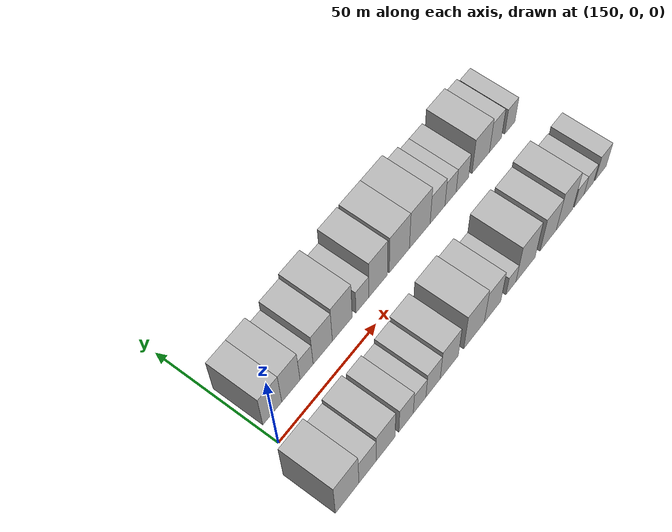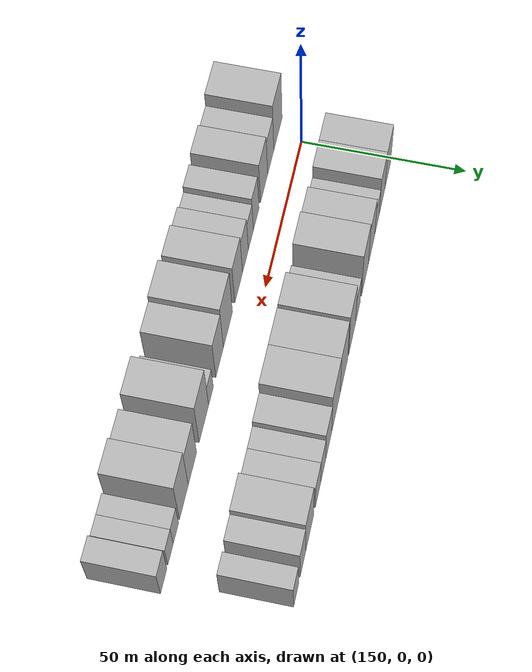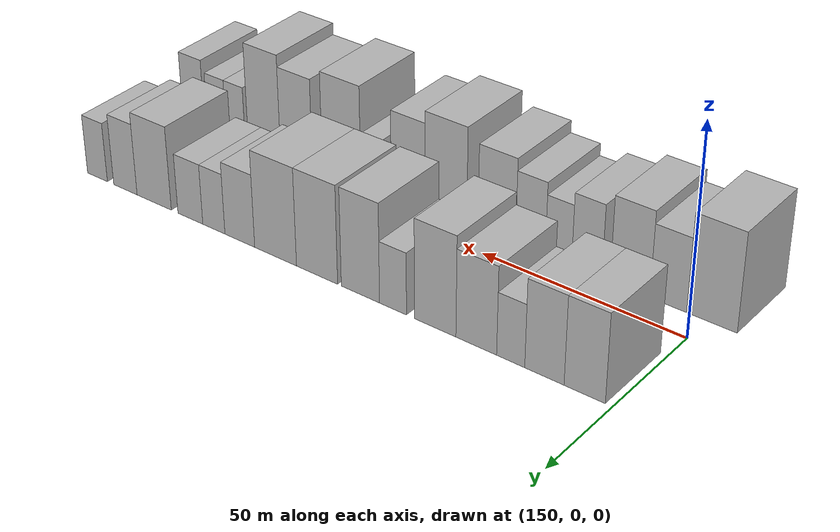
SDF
<sdf version="1.6">
 <world name="default">
  <model name="building_16">
   <static>1</static>
   <pose>156.3783 17.5000 0 0.000000 0.000000 1.570796</pose>
   <link name="link">
    <pose>0 0 10.50 0 0 0</pose>
    <collision name="collision"><geometry><box><size>20.0000 9.3675 21.0000</size></box></geometry></collision>
    <visual name="visual">
     <cast_shadows>0</cast_shadows>
     <geometry><box><size>20.0000 9.3675 21.0000</size></box></geometry>
     <material>
      <script>
       <uri>model://HANNAS_wall/materials/scripts</uri>
       <uri>model://HANNAS_wall/materials/textures</uri>
       <name>vrc/HANNAS_wall</name>
      </script>
     </material>
    </visual>
   </link>
  </model>
  <model name="building_17">
   <static>1</static>
   <pose>165.6403 17.5000 0 0.000000 0.000000 1.570796</pose>
   <link name="link">
    <pose>0 0 10.50 0 0 0</pose>
    <collision name="collision"><geometry><box><size>20.0000 9.1563 21.0000</size></box></geometry></collision>
    <visual name="visual">
     <cast_shadows>0</cast_shadows>
     <geometry><box><size>20.0000 9.1563 21.0000</size></box></geometry>
     <material>
      <script>
       <uri>model://HANNAS_wall/materials/scripts</uri>
       <uri>model://HANNAS_wall/materials/textures</uri>
       <name>vrc/HANNAS_wall</name>
      </script>
     </material>
    </visual>
   </link>
  </model>
  <model name="building_18">
   <static>1</static>
   <pose>173.5672 17.5000 0 0.000000 0.000000 1.570796</pose>
   <link name="link">
    <pose>0 0 7.50 0 0 0</pose>
    <collision name="collision"><geometry><box><size>20.0000 6.6975 15.0000</size></box></geometry></collision>
    <visual name="visual">
     <cast_shadows>0</cast_shadows>
     <geometry><box><size>20.0000 6.6975 15.0000</size></box></geometry>
     <material>
      <script>
       <uri>model://HANNAS_wall/materials/scripts</uri>
       <uri>model://HANNAS_wall/materials/textures</uri>
       <name>vrc/HANNAS_wall</name>
      </script>
     </material>
    </visual>
   </link>
  </model>
  <model name="building_19">
   <static>1</static>
   <pose>181.8697 17.5000 0 0.000000 0.000000 1.570796</pose>
   <link name="link">
    <pose>0 0 10.50 0 0 0</pose>
    <collision name="collision"><geometry><box><size>20.0000 9.9075 21.0000</size></box></geometry></collision>
    <visual name="visual">
     <cast_shadows>0</cast_shadows>
     <geometry><box><size>20.0000 9.9075 21.0000</size></box></geometry>
     <material>
      <script>
       <uri>model://HANNAS_wall/materials/scripts</uri>
       <uri>model://HANNAS_wall/materials/textures</uri>
       <name>vrc/HANNAS_wall</name>
      </script>
     </material>
    </visual>
   </link>
  </model>
  <model name="building_20">
   <static>1</static>
   <pose>192.0261 17.5000 0 0.000000 0.000000 1.570796</pose>
   <link name="link">
    <pose>0 0 12.00 0 0 0</pose>
    <collision name="collision"><geometry><box><size>20.0000 10.4054 24.0000</size></box></geometry></collision>
    <visual name="visual">
     <cast_shadows>0</cast_shadows>
     <geometry><box><size>20.0000 10.4054 24.0000</size></box></geometry>
     <material>
      <script>
       <uri>model://HANNAS_wall/materials/scripts</uri>
       <uri>model://HANNAS_wall/materials/textures</uri>
       <name>vrc/HANNAS_wall</name>
      </script>
     </material>
    </visual>
   </link>
  </model>
  <model name="building_21">
   <static>1</static>
   <pose>202.6918 17.5000 0 0.000000 0.000000 1.570796</pose>
   <link name="link">
    <pose>0 0 7.50 0 0 0</pose>
    <collision name="collision"><geometry><box><size>20.0000 6.9259 15.0000</size></box></geometry></collision>
    <visual name="visual">
     <cast_shadows>0</cast_shadows>
     <geometry><box><size>20.0000 6.9259 15.0000</size></box></geometry>
     <material>
      <script>
       <uri>model://HANNAS_wall/materials/scripts</uri>
       <uri>model://HANNAS_wall/materials/textures</uri>
       <name>vrc/HANNAS_wall</name>
      </script>
     </material>
    </visual>
   </link>
  </model>
  <model name="building_22">
   <static>1</static>
   <pose>211.1775 17.5000 0 0.000000 0.000000 1.570796</pose>
   <link name="link">
    <pose>0 0 12.00 0 0 0</pose>
    <collision name="collision"><geometry><box><size>20.0000 10.0453 24.0000</size></box></geometry></collision>
    <visual name="visual">
     <cast_shadows>0</cast_shadows>
     <geometry><box><size>20.0000 10.0453 24.0000</size></box></geometry>
     <material>
      <script>
       <uri>model://HANNAS_wall/materials/scripts</uri>
       <uri>model://HANNAS_wall/materials/textures</uri>
       <name>vrc/HANNAS_wall</name>
      </script>
     </material>
    </visual>
   </link>
  </model>
  <model name="building_23">
   <static>1</static>
   <pose>222.7701 17.5000 0 0.000000 0.000000 1.570796</pose>
   <link name="link">
    <pose>0 0 12.00 0 0 0</pose>
    <collision name="collision"><geometry><box><size>20.0000 11.1399 24.0000</size></box></geometry></collision>
    <visual name="visual">
     <cast_shadows>0</cast_shadows>
     <geometry><box><size>20.0000 11.1399 24.0000</size></box></geometry>
     <material>
      <script>
       <uri>model://HANNAS_wall/materials/scripts</uri>
       <uri>model://HANNAS_wall/materials/textures</uri>
       <name>vrc/HANNAS_wall</name>
      </script>
     </material>
    </visual>
   </link>
  </model>
  <model name="building_24">
   <static>1</static>
   <pose>234.1753 17.5000 0 0.000000 0.000000 1.570796</pose>
   <link name="link">
    <pose>0 0 12.00 0 0 0</pose>
    <collision name="collision"><geometry><box><size>20.0000 11.6705 24.0000</size></box></geometry></collision>
    <visual name="visual">
     <cast_shadows>0</cast_shadows>
     <geometry><box><size>20.0000 11.6705 24.0000</size></box></geometry>
     <material>
      <script>
       <uri>model://HANNAS_wall/materials/scripts</uri>
       <uri>model://HANNAS_wall/materials/textures</uri>
       <name>vrc/HANNAS_wall</name>
      </script>
     </material>
    </visual>
   </link>
  </model>
  <model name="building_25">
   <static>1</static>
   <pose>244.2708 17.5000 0 0.000000 0.000000 1.570796</pose>
   <link name="link">
    <pose>0 0 9.00 0 0 0</pose>
    <collision name="collision"><geometry><box><size>20.0000 8.5207 18.0000</size></box></geometry></collision>
    <visual name="visual">
     <cast_shadows>0</cast_shadows>
     <geometry><box><size>20.0000 8.5207 18.0000</size></box></geometry>
     <material>
      <script>
       <uri>model://HANNAS_wall/materials/scripts</uri>
       <uri>model://HANNAS_wall/materials/textures</uri>
       <name>vrc/HANNAS_wall</name>
      </script>
     </material>
    </visual>
   </link>
  </model>
  <model name="building_26">
   <static>1</static>
   <pose>251.7614 17.5000 0 0.000000 0.000000 1.570796</pose>
   <link name="link">
    <pose>0 0 7.50 0 0 0</pose>
    <collision name="collision"><geometry><box><size>20.0000 6.4604 15.0000</size></box></geometry></collision>
    <visual name="visual">
     <cast_shadows>0</cast_shadows>
     <geometry><box><size>20.0000 6.4604 15.0000</size></box></geometry>
     <material>
      <script>
       <uri>model://HANNAS_wall/materials/scripts</uri>
       <uri>model://HANNAS_wall/materials/textures</uri>
       <name>vrc/HANNAS_wall</name>
      </script>
     </material>
    </visual>
   </link>
  </model>
  <model name="building_27">
   <static>1</static>
   <pose>258.6778 17.5000 0 0.000000 0.000000 1.570796</pose>
   <link name="link">
    <pose>0 0 7.50 0 0 0</pose>
    <collision name="collision"><geometry><box><size>20.0000 7.3725 15.0000</size></box></geometry></collision>
    <visual name="visual">
     <cast_shadows>0</cast_shadows>
     <geometry><box><size>20.0000 7.3725 15.0000</size></box></geometry>
     <material>
      <script>
       <uri>model://HANNAS_wall/materials/scripts</uri>
       <uri>model://HANNAS_wall/materials/textures</uri>
       <name>vrc/HANNAS_wall</name>
      </script>
     </material>
    </visual>
   </link>
  </model>
  <model name="building_28">
   <static>1</static>
   <pose>269.5760 17.5000 0 0.000000 0.000000 1.570796</pose>
   <link name="link">
    <pose>0 0 10.50 0 0 0</pose>
    <collision name="collision"><geometry><box><size>20.0000 10.4240 21.0000</size></box></geometry></collision>
    <visual name="visual">
     <cast_shadows>0</cast_shadows>
     <geometry><box><size>20.0000 10.4240 21.0000</size></box></geometry>
     <material>
      <script>
       <uri>model://HANNAS_wall/materials/scripts</uri>
       <uri>model://HANNAS_wall/materials/textures</uri>
       <name>vrc/HANNAS_wall</name>
      </script>
     </material>
    </visual>
   </link>
  </model>
  <model name="building_29">
   <static>1</static>
   <pose>278.4209 17.5000 0 0.000000 0.000000 1.570796</pose>
   <link name="link">
    <pose>0 0 9.00 0 0 0</pose>
    <collision name="collision"><geometry><box><size>20.0000 7.2658 18.0000</size></box></geometry></collision>
    <visual name="visual">
     <cast_shadows>0</cast_shadows>
     <geometry><box><size>20.0000 7.2658 18.0000</size></box></geometry>
     <material>
      <script>
       <uri>model://HANNAS_wall/materials/scripts</uri>
       <uri>model://HANNAS_wall/materials/textures</uri>
       <name>vrc/HANNAS_wall</name>
      </script>
     </material>
    </visual>
   </link>
  </model>
  <model name="building_30">
   <static>1</static>
   <pose>287.1902 17.5000 0 0.000000 0.000000 1.570796</pose>
   <link name="link">
    <pose>0 0 7.50 0 0 0</pose>
    <collision name="collision"><geometry><box><size>20.0000 6.2728 15.0000</size></box></geometry></collision>
    <visual name="visual">
     <cast_shadows>0</cast_shadows>
     <geometry><box><size>20.0000 6.2728 15.0000</size></box></geometry>
     <material>
      <script>
       <uri>model://HANNAS_wall/materials/scripts</uri>
       <uri>model://HANNAS_wall/materials/textures</uri>
       <name>vrc/HANNAS_wall</name>
      </script>
     </material>
    </visual>
   </link>
  </model>
  <model name="building_45">
   <static>1</static>
   <pose>148.8252 -17.5000 0 0.000000 0.000000 1.570796</pose>
   <link name="link">
    <pose>0 0 12.00 0 0 0</pose>
    <collision name="collision"><geometry><box><size>20.0000 11.6465 24.0000</size></box></geometry></collision>
    <visual name="visual">
     <cast_shadows>0</cast_shadows>
     <geometry><box><size>20.0000 11.6465 24.0000</size></box></geometry>
     <material>
      <script>
       <uri>model://HANNAS_wall/materials/scripts</uri>
       <uri>model://HANNAS_wall/materials/textures</uri>
       <name>vrc/HANNAS_wall</name>
      </script>
     </material>
    </visual>
   </link>
  </model>
  <model name="building_46">
   <static>1</static>
   <pose>158.9990 -17.5000 0 0.000000 0.000000 1.570796</pose>
   <link name="link">
    <pose>0 0 9.00 0 0 0</pose>
    <collision name="collision"><geometry><box><size>20.0000 8.7010 18.0000</size></box></geometry></collision>
    <visual name="visual">
     <cast_shadows>0</cast_shadows>
     <geometry><box><size>20.0000 8.7010 18.0000</size></box></geometry>
     <material>
      <script>
       <uri>model://HANNAS_wall/materials/scripts</uri>
       <uri>model://HANNAS_wall/materials/textures</uri>
       <name>vrc/HANNAS_wall</name>
      </script>
     </material>
    </visual>
   </link>
  </model>
  <model name="building_47">
   <static>1</static>
   <pose>168.1669 -17.5000 0 0.000000 0.000000 1.570796</pose>
   <link name="link">
    <pose>0 0 10.50 0 0 0</pose>
    <collision name="collision"><geometry><box><size>20.0000 9.6349 21.0000</size></box></geometry></collision>
    <visual name="visual">
     <cast_shadows>0</cast_shadows>
     <geometry><box><size>20.0000 9.6349 21.0000</size></box></geometry>
     <material>
      <script>
       <uri>model://HANNAS_wall/materials/scripts</uri>
       <uri>model://HANNAS_wall/materials/textures</uri>
       <name>vrc/HANNAS_wall</name>
      </script>
     </material>
    </visual>
   </link>
  </model>
  <model name="building_48">
   <static>1</static>
   <pose>178.7441 -17.5000 0 0.000000 0.000000 1.570796</pose>
   <link name="link">
    <pose>0 0 9.00 0 0 0</pose>
    <collision name="collision"><geometry><box><size>20.0000 7.5194 18.0000</size></box></geometry></collision>
    <visual name="visual">
     <cast_shadows>0</cast_shadows>
     <geometry><box><size>20.0000 7.5194 18.0000</size></box></geometry>
     <material>
      <script>
       <uri>model://HANNAS_wall/materials/scripts</uri>
       <uri>model://HANNAS_wall/materials/textures</uri>
       <name>vrc/HANNAS_wall</name>
      </script>
     </material>
    </visual>
   </link>
  </model>
  <model name="building_49">
   <static>1</static>
   <pose>185.8427 -17.5000 0 0.000000 0.000000 1.570796</pose>
   <link name="link">
    <pose>0 0 7.50 0 0 0</pose>
    <collision name="collision"><geometry><box><size>20.0000 6.6780 15.0000</size></box></geometry></collision>
    <visual name="visual">
     <cast_shadows>0</cast_shadows>
     <geometry><box><size>20.0000 6.6780 15.0000</size></box></geometry>
     <material>
      <script>
       <uri>model://HANNAS_wall/materials/scripts</uri>
       <uri>model://HANNAS_wall/materials/textures</uri>
       <name>vrc/HANNAS_wall</name>
      </script>
     </material>
    </visual>
   </link>
  </model>
  <model name="building_50">
   <static>1</static>
   <pose>192.9999 -17.5000 0 0.000000 0.000000 1.570796</pose>
   <link name="link">
    <pose>0 0 9.00 0 0 0</pose>
    <collision name="collision"><geometry><box><size>20.0000 7.6363 18.0000</size></box></geometry></collision>
    <visual name="visual">
     <cast_shadows>0</cast_shadows>
     <geometry><box><size>20.0000 7.6363 18.0000</size></box></geometry>
     <material>
      <script>
       <uri>model://HANNAS_wall/materials/scripts</uri>
       <uri>model://HANNAS_wall/materials/textures</uri>
       <name>vrc/HANNAS_wall</name>
      </script>
     </material>
    </visual>
   </link>
  </model>
  <model name="building_51">
   <static>1</static>
   <pose>201.7672 -17.5000 0 0.000000 0.000000 1.570796</pose>
   <link name="link">
    <pose>0 0 10.50 0 0 0</pose>
    <collision name="collision"><geometry><box><size>20.0000 9.8984 21.0000</size></box></geometry></collision>
    <visual name="visual">
     <cast_shadows>0</cast_shadows>
     <geometry><box><size>20.0000 9.8984 21.0000</size></box></geometry>
     <material>
      <script>
       <uri>model://HANNAS_wall/materials/scripts</uri>
       <uri>model://HANNAS_wall/materials/textures</uri>
       <name>vrc/HANNAS_wall</name>
      </script>
     </material>
    </visual>
   </link>
  </model>
  <model name="building_52">
   <static>1</static>
   <pose>215.4058 -17.5000 0 0.000000 0.000000 1.570796</pose>
   <link name="link">
    <pose>0 0 12.00 0 0 0</pose>
    <collision name="collision"><geometry><box><size>20.0000 11.3788 24.0000</size></box></geometry></collision>
    <visual name="visual">
     <cast_shadows>0</cast_shadows>
     <geometry><box><size>20.0000 11.3788 24.0000</size></box></geometry>
     <material>
      <script>
       <uri>model://HANNAS_wall/materials/scripts</uri>
       <uri>model://HANNAS_wall/materials/textures</uri>
       <name>vrc/HANNAS_wall</name>
      </script>
     </material>
    </visual>
   </link>
  </model>
  <model name="building_53">
   <static>1</static>
   <pose>225.8042 -17.5000 0 0.000000 0.000000 1.570796</pose>
   <link name="link">
    <pose>0 0 10.50 0 0 0</pose>
    <collision name="collision"><geometry><box><size>20.0000 9.4179 21.0000</size></box></geometry></collision>
    <visual name="visual">
     <cast_shadows>0</cast_shadows>
     <geometry><box><size>20.0000 9.4179 21.0000</size></box></geometry>
     <material>
      <script>
       <uri>model://HANNAS_wall/materials/scripts</uri>
       <uri>model://HANNAS_wall/materials/textures</uri>
       <name>vrc/HANNAS_wall</name>
      </script>
     </material>
    </visual>
   </link>
  </model>
  <model name="building_54">
   <static>1</static>
   <pose>236.3628 -17.5000 0 0.000000 0.000000 1.570796</pose>
   <link name="link">
    <pose>0 0 6.00 0 0 0</pose>
    <collision name="collision"><geometry><box><size>20.0000 5.6993 12.0000</size></box></geometry></collision>
    <visual name="visual">
     <cast_shadows>0</cast_shadows>
     <geometry><box><size>20.0000 5.6993 12.0000</size></box></geometry>
     <material>
      <script>
       <uri>model://HANNAS_wall/materials/scripts</uri>
       <uri>model://HANNAS_wall/materials/textures</uri>
       <name>vrc/HANNAS_wall</name>
      </script>
     </material>
    </visual>
   </link>
  </model>
  <model name="building_55">
   <static>1</static>
   <pose>244.8325 -17.5000 0 0.000000 0.000000 1.570796</pose>
   <link name="link">
    <pose>0 0 12.00 0 0 0</pose>
    <collision name="collision"><geometry><box><size>20.0000 11.2401 24.0000</size></box></geometry></collision>
    <visual name="visual">
     <cast_shadows>0</cast_shadows>
     <geometry><box><size>20.0000 11.2401 24.0000</size></box></geometry>
     <material>
      <script>
       <uri>model://HANNAS_wall/materials/scripts</uri>
       <uri>model://HANNAS_wall/materials/textures</uri>
       <name>vrc/HANNAS_wall</name>
      </script>
     </material>
    </visual>
   </link>
  </model>
  <model name="building_56">
   <static>1</static>
   <pose>258.2687 -17.5000 0 0.000000 0.000000 1.570796</pose>
   <link name="link">
    <pose>0 0 10.50 0 0 0</pose>
    <collision name="collision"><geometry><box><size>20.0000 9.6323 21.0000</size></box></geometry></collision>
    <visual name="visual">
     <cast_shadows>0</cast_shadows>
     <geometry><box><size>20.0000 9.6323 21.0000</size></box></geometry>
     <material>
      <script>
       <uri>model://HANNAS_wall/materials/scripts</uri>
       <uri>model://HANNAS_wall/materials/textures</uri>
       <name>vrc/HANNAS_wall</name>
      </script>
     </material>
    </visual>
   </link>
  </model>
  <model name="building_57">
   <static>1</static>
   <pose>268.0836 -17.5000 0 0.000000 0.000000 1.570796</pose>
   <link name="link">
    <pose>0 0 12.00 0 0 0</pose>
    <collision name="collision"><geometry><box><size>20.0000 9.9975 24.0000</size></box></geometry></collision>
    <visual name="visual">
     <cast_shadows>0</cast_shadows>
     <geometry><box><size>20.0000 9.9975 24.0000</size></box></geometry>
     <material>
      <script>
       <uri>model://HANNAS_wall/materials/scripts</uri>
       <uri>model://HANNAS_wall/materials/textures</uri>
       <name>vrc/HANNAS_wall</name>
      </script>
     </material>
    </visual>
   </link>
  </model>
  <model name="building_58">
   <static>1</static>
   <pose>277.0751 -17.5000 0 0.000000 0.000000 1.570796</pose>
   <link name="link">
    <pose>0 0 6.00 0 0 0</pose>
    <collision name="collision"><geometry><box><size>20.0000 5.9855 12.0000</size></box></geometry></collision>
    <visual name="visual">
     <cast_shadows>0</cast_shadows>
     <geometry><box><size>20.0000 5.9855 12.0000</size></box></geometry>
     <material>
      <script>
       <uri>model://HANNAS_wall/materials/scripts</uri>
       <uri>model://HANNAS_wall/materials/textures</uri>
       <name>vrc/HANNAS_wall</name>
      </script>
     </material>
    </visual>
   </link>
  </model>
  <model name="building_59">
   <static>1</static>
   <pose>283.0418 -17.5000 0 0.000000 0.000000 1.570796</pose>
   <link name="link">
    <pose>0 0 6.00 0 0 0</pose>
    <collision name="collision"><geometry><box><size>20.0000 5.9479 12.0000</size></box></geometry></collision>
    <visual name="visual">
     <cast_shadows>0</cast_shadows>
     <geometry><box><size>20.0000 5.9479 12.0000</size></box></geometry>
     <material>
      <script>
       <uri>model://HANNAS_wall/materials/scripts</uri>
       <uri>model://HANNAS_wall/materials/textures</uri>
       <name>vrc/HANNAS_wall</name>
      </script>
     </material>
    </visual>
   </link>
  </model>
  <model name="building_60">
   <static>1</static>
   <pose>290.5140 -17.5000 0 0.000000 0.000000 1.570796</pose>
   <link name="link">
    <pose>0 0 7.50 0 0 0</pose>
    <collision name="collision"><geometry><box><size>20.0000 6.9966 15.0000</size></box></geometry></collision>
    <visual name="visual">
     <cast_shadows>0</cast_shadows>
     <geometry><box><size>20.0000 6.9966 15.0000</size></box></geometry>
     <material>
      <script>
       <uri>model://HANNAS_wall/materials/scripts</uri>
       <uri>model://HANNAS_wall/materials/textures</uri>
       <name>vrc/HANNAS_wall</name>
      </script>
     </material>
    </visual>
   </link>
  </model>
 </world>
</sdf>
